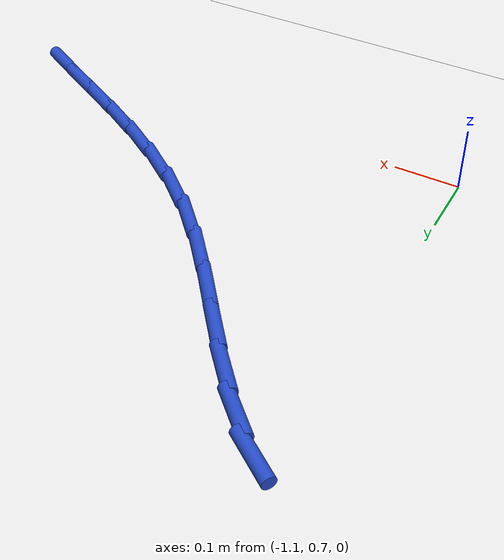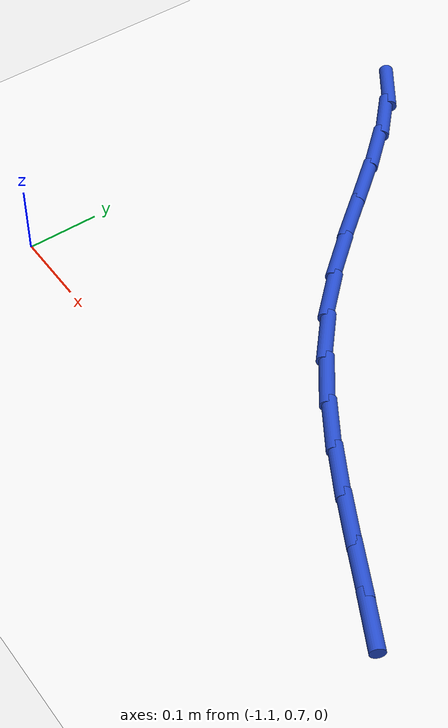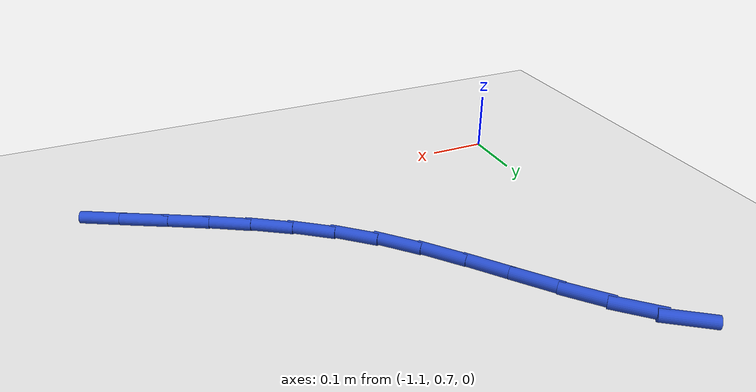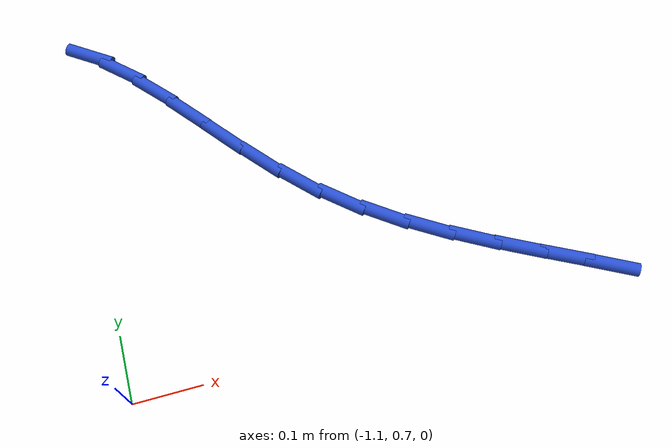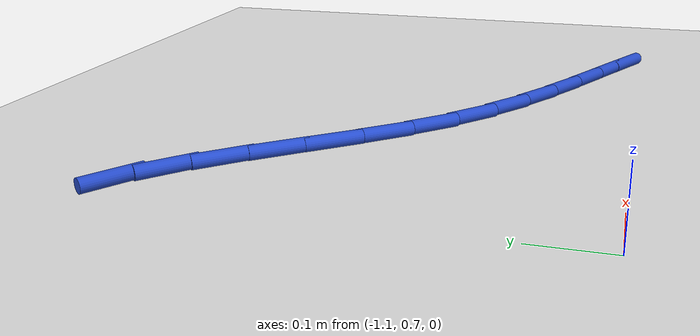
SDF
<sdf version="1.6">
 <world name="default">
  <model name="ground_plane">
   <static>1</static>
   <link name="link">
    <collision name="collision">
     <geometry><plane><normal>0 0 1</normal><size>100 100</size></plane></geometry>
     <surface><friction><ode><mu>100</mu><mu2>50</mu2></ode></friction></surface>
    </collision>
    <visual name="visual">
     <cast_shadows>0</cast_shadows>
     <geometry><plane><normal>0 0 1</normal><size>100 100</size></plane></geometry>
     <material>
      <script><uri>file://media/materials/scripts/gazebo.material</uri><name>Gazebo/WhiteGlow</name></script>
     </material>
    </visual>
   </link>
  </model>
  <model name="line">
   <link name="link_13">
    <pose>-0.38756011276920066 0.7106771670838637 0.01 0 1.57 -0.48742034401000883</pose>
    <collision name="collision">
     <geometry><cylinder><radius>0.01</radius><length>0.08</length></cylinder></geometry>
    </collision>
    <visual name="visual">
     <material>
      <script><name>Gazebo/Blue</name><uri>file://media/materials/scripts/gazebo.material</uri></script>
     </material>
     <geometry><cylinder><radius>0.01</radius><length>0.08</length></cylinder></geometry>
    </visual>
   </link>
   <link name="link_14">
    <pose>-0.44638266692826145 0.741857774637138 0.01 0 1.57 -0.4791038449268643</pose>
    <collision name="collision">
     <geometry><cylinder><radius>0.01</radius><length>0.08</length></cylinder></geometry>
    </collision>
    <visual name="visual">
     <material>
      <script><name>Gazebo/Blue</name><uri>file://media/materials/scripts/gazebo.material</uri></script>
     </material>
     <geometry><cylinder><radius>0.01</radius><length>0.08</length></cylinder></geometry>
    </visual>
   </link>
   <link name="link_15">
    <pose>-0.5063069174071553 0.7729867646575831 0.01 0 1.57 -0.4906301823663073</pose>
    <collision name="collision">
     <geometry><cylinder><radius>0.01</radius><length>0.08</length></cylinder></geometry>
    </collision>
    <visual name="visual">
     <material>
      <script><name>Gazebo/Blue</name><uri>file://media/materials/scripts/gazebo.material</uri></script>
     </material>
     <geometry><cylinder><radius>0.01</radius><length>0.08</length></cylinder></geometry>
    </visual>
   </link>
   <link name="link_16">
    <pose>-0.5664940472312143 0.8051386024154366 0.01 0 1.57 -0.5214902292099631</pose>
    <collision name="collision">
     <geometry><cylinder><radius>0.01</radius><length>0.08</length></cylinder></geometry>
    </collision>
    <visual name="visual">
     <material>
      <script><name>Gazebo/Blue</name><uri>file://media/materials/scripts/gazebo.material</uri></script>
     </material>
     <geometry><cylinder><radius>0.01</radius><length>0.08</length></cylinder></geometry>
    </visual>
   </link>
   <link name="link_17">
    <pose>-0.6261052394257701 0.8393877531809352 0.01 0 1.57 -0.5714460895715789</pose>
    <collision name="collision">
     <geometry><cylinder><radius>0.01</radius><length>0.08</length></cylinder></geometry>
    </collision>
    <visual name="visual">
     <material>
      <script><name>Gazebo/Blue</name><uri>file://media/materials/scripts/gazebo.material</uri></script>
     </material>
     <geometry><cylinder><radius>0.01</radius><length>0.08</length></cylinder></geometry>
    </visual>
   </link>
   <link name="link_18">
    <pose>-0.6843016770161552 0.8768086822243168 0.01 0 1.57 -0.6401754400836505</pose>
    <collision name="collision">
     <geometry><cylinder><radius>0.01</radius><length>0.08</length></cylinder></geometry>
    </collision>
    <visual name="visual">
     <material>
      <script><name>Gazebo/Blue</name><uri>file://media/materials/scripts/gazebo.material</uri></script>
     </material>
     <geometry><cylinder><radius>0.01</radius><length>0.08</length></cylinder></geometry>
    </visual>
   </link>
   <link name="link_19">
    <pose>-0.7402445430277012 0.9184758548158186 0.01 0 1.57 -0.7267428837347645</pose>
    <collision name="collision">
     <geometry><cylinder><radius>0.01</radius><length>0.08</length></cylinder></geometry>
    </collision>
    <visual name="visual">
     <material>
      <script><name>Gazebo/Blue</name><uri>file://media/materials/scripts/gazebo.material</uri></script>
     </material>
     <geometry><cylinder><radius>0.01</radius><length>0.08</length></cylinder></geometry>
    </visual>
   </link>
   <link name="link_20">
    <pose>-0.7930950794306948 0.9654636225226815 0.01 0 1.57 -0.8183096862341369</pose>
    <collision name="collision">
     <geometry><cylinder><radius>0.01</radius><length>0.08</length></cylinder></geometry>
    </collision>
    <visual name="visual">
     <material>
      <script><name>Gazebo/Blue</name><uri>file://media/materials/scripts/gazebo.material</uri></script>
     </material>
     <geometry><cylinder><radius>0.01</radius><length>0.08</length></cylinder></geometry>
    </visual>
   </link>
   <link name="link_21">
    <pose>-0.8423923695602221 1.0181174925904948 0.01 0 1.57 -0.8790080868822114</pose>
    <collision name="collision">
     <geometry><cylinder><radius>0.01</radius><length>0.08</length></cylinder></geometry>
    </collision>
    <visual name="visual">
     <material>
      <script><name>Gazebo/Blue</name><uri>file://media/materials/scripts/gazebo.material</uri></script>
     </material>
     <geometry><cylinder><radius>0.01</radius><length>0.08</length></cylinder></geometry>
    </visual>
   </link>
   <link name="link_22">
    <pose>-0.8889504872939645 1.0743235548910537 0.01 0 1.57 -0.904644522933586</pose>
    <collision name="collision">
     <geometry><cylinder><radius>0.01</radius><length>0.08</length></cylinder></geometry>
    </collision>
    <visual name="visual">
     <material>
      <script><name>Gazebo/Blue</name><uri>file://media/materials/scripts/gazebo.material</uri></script>
     </material>
     <geometry><cylinder><radius>0.01</radius><length>0.08</length></cylinder></geometry>
    </visual>
   </link>
   <link name="link_23">
    <pose>-0.9338521624642664 1.1314496702580512 0.01 0 1.57 -0.8960912681948839</pose>
    <collision name="collision">
     <geometry><cylinder><radius>0.01</radius><length>0.08</length></cylinder></geometry>
    </collision>
    <visual name="visual">
     <material>
      <script><name>Gazebo/Blue</name><uri>file://media/materials/scripts/gazebo.material</uri></script>
     </material>
     <geometry><cylinder><radius>0.01</radius><length>0.08</length></cylinder></geometry>
    </visual>
   </link>
   <link name="link_24">
    <pose>-0.9781801249034723 1.1868636995251831 0.01 0 1.57 -0.8502952608630467</pose>
    <collision name="collision">
     <geometry><cylinder><radius>0.01</radius><length>0.08</length></cylinder></geometry>
    </collision>
    <visual name="visual">
     <material>
      <script><name>Gazebo/Blue</name><uri>file://media/materials/scripts/gazebo.material</uri></script>
     </material>
     <geometry><cylinder><radius>0.01</radius><length>0.08</length></cylinder></geometry>
    </visual>
   </link>
   <link name="link_25">
    <pose>-1.0230171044439265 1.2379335035261425 0.01 0 1.57 -0.7596059277160364</pose>
    <collision name="collision">
     <geometry><cylinder><radius>0.01</radius><length>0.08</length></cylinder></geometry>
    </collision>
    <visual name="visual">
     <material>
      <script><name>Gazebo/Blue</name><uri>file://media/materials/scripts/gazebo.material</uri></script>
     </material>
     <geometry><cylinder><radius>0.01</radius><length>0.08</length></cylinder></geometry>
    </visual>
   </link>
   <link name="link_26">
    <pose>-1.0694458309179735 1.2820269430946247 0.01 0 1.57 -0.612264597956209</pose>
    <collision name="collision">
     <geometry><cylinder><radius>0.01</radius><length>0.08</length></cylinder></geometry>
    </collision>
    <visual name="visual">
     <material>
      <script><name>Gazebo/Blue</name><uri>file://media/materials/scripts/gazebo.material</uri></script>
     </material>
     <geometry><cylinder><radius>0.01</radius><length>0.08</length></cylinder></geometry>
    </visual>
   </link>
  </model>
 </world>
</sdf>
